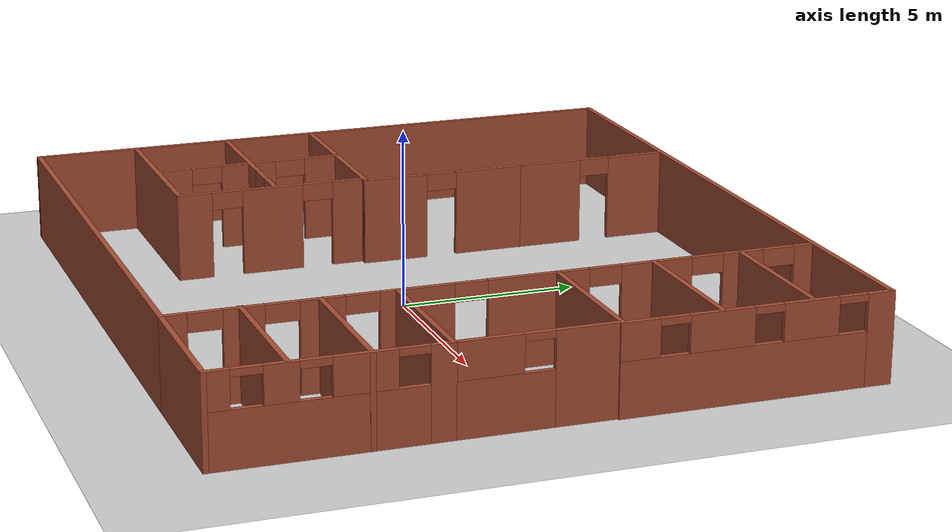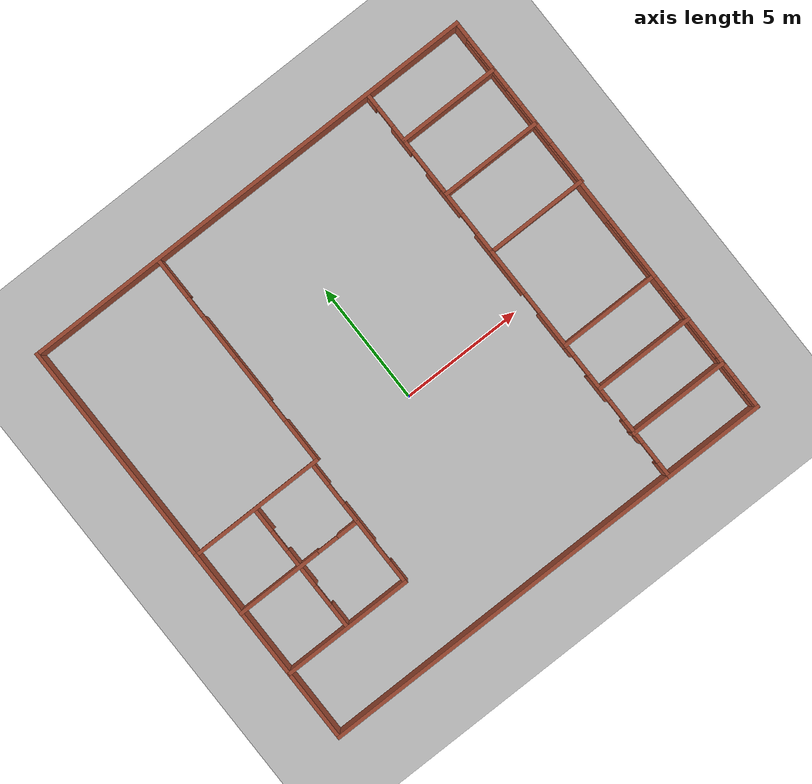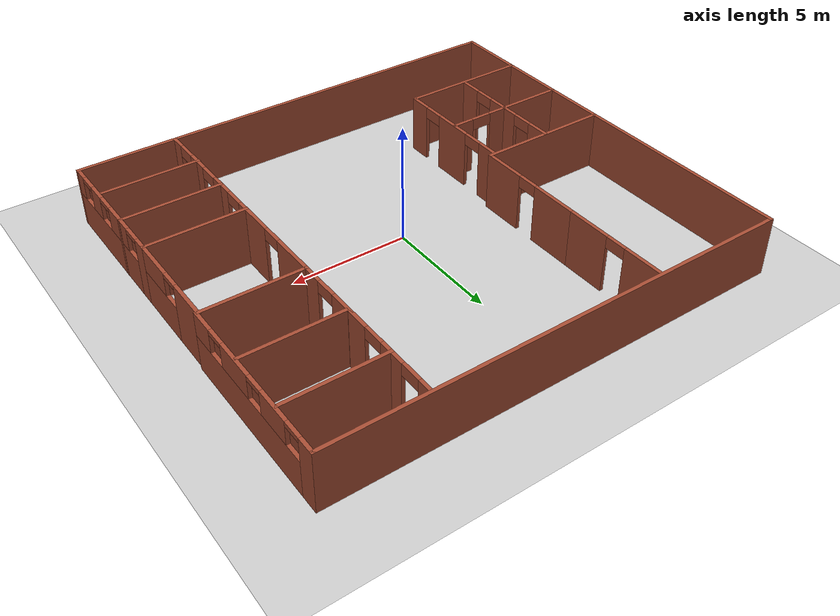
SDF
<sdf version="1.6">
 <world name="default">
  <model name="ground_plane">
   <static>1</static>
   <link name="link">
    <collision name="collision">
     <geometry><plane><normal>0 0 1</normal><size>100 100</size></plane></geometry>
     <surface><friction><ode><mu>100</mu><mu2>50</mu2></ode></friction></surface>
    </collision>
    <visual name="visual">
     <cast_shadows>0</cast_shadows>
     <geometry><plane><normal>0 0 1</normal><size>100 100</size></plane></geometry>
     <material>
      <script><uri>file://media/materials/scripts/gazebo.material</uri><name>Gazebo/Grey</name></script>
     </material>
    </visual>
   </link>
  </model>
  <model name="model">
   <pose>0.04108 0.71194 0 0 -0 0</pose>
   <link name="Wall_100">
    <pose>5.59529 6.58082 0 0 -0 1.5708</pose>
    <visual name="Wall_100_Visual_0">
     <pose>-1.7592 0 1.25 0 -0 0</pose>
     <geometry><box><size>0.981608 0.15 2.5</size></box></geometry>
     <material>
      <script><uri>file://media/materials/scripts/gazebo.material</uri><name>Gazebo/Bricks</name></script>
      <ambient>1 1 1 1</ambient>
     </material>
     <meta><layer>0</layer></meta>
    </visual>
    <collision name="Wall_100_Collision_0">
     <geometry><box><size>0.981608 0.15 2.5</size></box></geometry>
     <pose>-1.7592 0 1.25 0 -0 0</pose>
    </collision>
    <visual name="Wall_100_Visual_1">
     <pose>0.216608 0 1.25 0 -0 0</pose>
     <geometry><box><size>1.17 0.15 2.5</size></box></geometry>
     <material>
      <script><uri>file://media/materials/scripts/gazebo.material</uri><name>Gazebo/Bricks</name></script>
      <ambient>1 1 1 1</ambient>
     </material>
     <meta><layer>0</layer></meta>
    </visual>
    <collision name="Wall_100_Collision_1">
     <geometry><box><size>1.17 0.15 2.5</size></box></geometry>
     <pose>0.216608 0 1.25 0 -0 0</pose>
    </collision>
    <visual name="Wall_100_Visual_2">
     <pose>1.9758 0 1.25 0 -0 0</pose>
     <geometry><box><size>0.548392 0.15 2.5</size></box></geometry>
     <material>
      <script><uri>file://media/materials/scripts/gazebo.material</uri><name>Gazebo/Bricks</name></script>
      <ambient>1 1 1 1</ambient>
     </material>
     <meta><layer>0</layer></meta>
    </visual>
    <collision name="Wall_100_Collision_2">
     <geometry><box><size>0.548392 0.15 2.5</size></box></geometry>
     <pose>1.9758 0 1.25 0 -0 0</pose>
    </collision>
    <visual name="Wall_100_Visual_3">
     <pose>-0.818392 0 2.25 0 -0 0</pose>
     <geometry><box><size>0.9 0.15 0.5</size></box></geometry>
     <material>
      <script><uri>file://media/materials/scripts/gazebo.material</uri><name>Gazebo/Bricks</name></script>
      <ambient>1 1 1 1</ambient>
     </material>
     <meta><layer>0</layer></meta>
    </visual>
    <collision name="Wall_100_Collision_3">
     <geometry><box><size>0.9 0.15 0.5</size></box></geometry>
     <pose>-0.818392 0 2.25 0 -0 0</pose>
    </collision>
    <visual name="Wall_100_Visual_4">
     <pose>1.25161 0 2.25 0 -0 0</pose>
     <geometry><box><size>0.9 0.15 0.5</size></box></geometry>
     <material>
      <script><uri>file://media/materials/scripts/gazebo.material</uri><name>Gazebo/Bricks</name></script>
      <ambient>1 1 1 1</ambient>
     </material>
     <meta><layer>0</layer></meta>
    </visual>
    <collision name="Wall_100_Collision_4">
     <geometry><box><size>0.9 0.15 0.5</size></box></geometry>
     <pose>1.25161 0 2.25 0 -0 0</pose>
    </collision>
   </link>
   <link name="Wall_102">
    <pose>9.69529 -5.84418 0 0 0 -1.5708</pose>
    <visual name="Wall_102_Visual_0">
     <pose>-2.80184 0 1.25 0 -0 0</pose>
     <geometry><box><size>0.646321 0.15 2.5</size></box></geometry>
     <material>
      <script><uri>file://media/materials/scripts/gazebo.material</uri><name>Gazebo/Bricks</name></script>
      <ambient>0.513726 0.407843 0.482353 1</ambient>
     </material>
     <meta><layer>0</layer></meta>
    </visual>
    <collision name="Wall_102_Collision_0">
     <geometry><box><size>0.646321 0.15 2.5</size></box></geometry>
     <pose>-2.80184 0 1.25 0 -0 0</pose>
    </collision>
    <visual name="Wall_102_Visual_1">
     <pose>0.32316 0 0.75 0 -0 0</pose>
     <geometry><box><size>5.60368 0.15 1.5</size></box></geometry>
     <material>
      <script><uri>file://media/materials/scripts/gazebo.material</uri><name>Gazebo/Bricks</name></script>
      <ambient>0.513726 0.407843 0.482353 1</ambient>
     </material>
     <meta><layer>0</layer></meta>
    </visual>
    <collision name="Wall_102_Collision_1">
     <geometry><box><size>5.60368 0.15 1.5</size></box></geometry>
     <pose>0.32316 0 0.75 0 -0 0</pose>
    </collision>
    <visual name="Wall_102_Visual_2">
     <pose>-0.86558 0 2 0 -0 0</pose>
     <geometry><box><size>1.6262 0.15 1</size></box></geometry>
     <material>
      <script><uri>file://media/materials/scripts/gazebo.material</uri><name>Gazebo/Bricks</name></script>
      <ambient>0.513726 0.407843 0.482353 1</ambient>
     </material>
     <meta><layer>0</layer></meta>
    </visual>
    <collision name="Wall_102_Collision_2">
     <geometry><box><size>1.6262 0.15 1</size></box></geometry>
     <pose>-0.86558 0 2 0 -0 0</pose>
    </collision>
    <visual name="Wall_102_Visual_3">
     <pose>1.186 0 2 0 -0 0</pose>
     <geometry><box><size>0.87697 0.15 1</size></box></geometry>
     <material>
      <script><uri>file://media/materials/scripts/gazebo.material</uri><name>Gazebo/Bricks</name></script>
      <ambient>0.513726 0.407843 0.482353 1</ambient>
     </material>
     <meta><layer>0</layer></meta>
    </visual>
    <collision name="Wall_102_Collision_3">
     <geometry><box><size>0.87697 0.15 1</size></box></geometry>
     <pose>1.186 0 2 0 -0 0</pose>
    </collision>
    <visual name="Wall_102_Visual_4">
     <pose>2.77474 0 2 0 -0 0</pose>
     <geometry><box><size>0.700511 0.15 1</size></box></geometry>
     <material>
      <script><uri>file://media/materials/scripts/gazebo.material</uri><name>Gazebo/Bricks</name></script>
      <ambient>0.513726 0.407843 0.482353 1</ambient>
     </material>
     <meta><layer>0</layer></meta>
    </visual>
    <collision name="Wall_102_Collision_4">
     <geometry><box><size>0.700511 0.15 1</size></box></geometry>
     <pose>2.77474 0 2 0 -0 0</pose>
    </collision>
    <visual name="Wall_102_Visual_5">
     <pose>-2.07868 0 2.4 0 -0 0</pose>
     <geometry><box><size>0.8 0.15 0.2</size></box></geometry>
     <material>
      <script><uri>file://media/materials/scripts/gazebo.material</uri><name>Gazebo/Bricks</name></script>
      <ambient>0.513726 0.407843 0.482353 1</ambient>
     </material>
     <meta><layer>0</layer></meta>
    </visual>
    <collision name="Wall_102_Collision_5">
     <geometry><box><size>0.8 0.15 0.2</size></box></geometry>
     <pose>-2.07868 0 2.4 0 -0 0</pose>
    </collision>
    <visual name="Wall_102_Visual_6">
     <pose>0.347519 0 2.4 0 -0 0</pose>
     <geometry><box><size>0.8 0.15 0.2</size></box></geometry>
     <material>
      <script><uri>file://media/materials/scripts/gazebo.material</uri><name>Gazebo/Bricks</name></script>
      <ambient>0.513726 0.407843 0.482353 1</ambient>
     </material>
     <meta><layer>0</layer></meta>
    </visual>
    <collision name="Wall_102_Collision_6">
     <geometry><box><size>0.8 0.15 0.2</size></box></geometry>
     <pose>0.347519 0 2.4 0 -0 0</pose>
    </collision>
    <visual name="Wall_102_Visual_7">
     <pose>2.02449 0 2.4 0 -0 0</pose>
     <geometry><box><size>0.8 0.15 0.2</size></box></geometry>
     <material>
      <script><uri>file://media/materials/scripts/gazebo.material</uri><name>Gazebo/Bricks</name></script>
      <ambient>0.513726 0.407843 0.482353 1</ambient>
     </material>
     <meta><layer>0</layer></meta>
    </visual>
    <collision name="Wall_102_Collision_7">
     <geometry><box><size>0.8 0.15 0.2</size></box></geometry>
     <pose>2.02449 0 2.4 0 -0 0</pose>
    </collision>
   </link>
   <link name="Wall_103">
    <collision name="Wall_103_Collision">
     <geometry><box><size>4.25 0.15 2.5</size></box></geometry>
     <pose>0 0 1.25 0 -0 0</pose>
    </collision>
    <visual name="Wall_103_Visual">
     <pose>0 0 1.25 0 -0 0</pose>
     <geometry><box><size>4.25 0.15 2.5</size></box></geometry>
     <material>
      <script><uri>file://media/materials/scripts/gazebo.material</uri><name>Gazebo/Bricks</name></script>
      <ambient>0.513726 0.407843 0.482353 1</ambient>
     </material>
     <meta><layer>0</layer></meta>
    </visual>
    <pose>7.64529 -8.89418 0 0 -0 3.14159</pose>
   </link>
   <link name="Wall_105">
    <pose>5.59529 -0.619178 0 0 0 -1.5708</pose>
    <visual name="Wall_105_Visual_0">
     <pose>-1.24513 0 1.25 0 -0 0</pose>
     <geometry><box><size>2.00974 0.15 2.5</size></box></geometry>
     <material>
      <script><uri>file://media/materials/scripts/gazebo.material</uri><name>Gazebo/Bricks</name></script>
      <ambient>1 1 1 1</ambient>
     </material>
     <meta><layer>0</layer></meta>
    </visual>
    <collision name="Wall_105_Collision_0">
     <geometry><box><size>2.00974 0.15 2.5</size></box></geometry>
     <pose>-1.24513 0 1.25 0 -0 0</pose>
    </collision>
    <visual name="Wall_105_Visual_1">
     <pose>1.45487 0 1.25 0 -0 0</pose>
     <geometry><box><size>1.59026 0.15 2.5</size></box></geometry>
     <material>
      <script><uri>file://media/materials/scripts/gazebo.material</uri><name>Gazebo/Bricks</name></script>
      <ambient>1 1 1 1</ambient>
     </material>
     <meta><layer>0</layer></meta>
    </visual>
    <collision name="Wall_105_Collision_1">
     <geometry><box><size>1.59026 0.15 2.5</size></box></geometry>
     <pose>1.45487 0 1.25 0 -0 0</pose>
    </collision>
    <visual name="Wall_105_Visual_2">
     <pose>0.209739 0 2.25 0 -0 0</pose>
     <geometry><box><size>0.9 0.15 0.5</size></box></geometry>
     <material>
      <script><uri>file://media/materials/scripts/gazebo.material</uri><name>Gazebo/Bricks</name></script>
      <ambient>1 1 1 1</ambient>
     </material>
     <meta><layer>0</layer></meta>
    </visual>
    <collision name="Wall_105_Collision_2">
     <geometry><box><size>0.9 0.15 0.5</size></box></geometry>
     <pose>0.209739 0 2.25 0 -0 0</pose>
    </collision>
   </link>
   <link name="Wall_107">
    <collision name="Wall_107_Collision">
     <geometry><box><size>4.25 0.15 2.5</size></box></geometry>
     <pose>0 0 1.25 0 -0 0</pose>
    </collision>
    <visual name="Wall_107_Visual">
     <pose>0 0 1.25 0 -0 0</pose>
     <geometry><box><size>4.25 0.15 2.5</size></box></geometry>
     <material>
      <script><uri>file://media/materials/scripts/gazebo.material</uri><name>Gazebo/Bricks</name></script>
      <ambient>0 0 0.498039 1</ambient>
     </material>
     <meta><layer>0</layer></meta>
    </visual>
    <pose>7.65134 4.2397 0 0 -0 0</pose>
   </link>
   <link name="Wall_109">
    <collision name="Wall_109_Collision">
     <geometry><box><size>4.25 0.15 2.5</size></box></geometry>
     <pose>0 0 1.25 0 -0 0</pose>
    </collision>
    <visual name="Wall_109_Visual">
     <pose>0 0 1.25 0 -0 0</pose>
     <geometry><box><size>4.25 0.15 2.5</size></box></geometry>
     <material>
      <script><uri>file://media/materials/scripts/gazebo.material</uri><name>Gazebo/Bricks</name></script>
      <ambient>0 0 0.498039 1</ambient>
     </material>
     <meta><layer>0</layer></meta>
    </visual>
    <pose>7.65134 6.73379 0 0 -0 0</pose>
   </link>
   <link name="Wall_111">
    <collision name="Wall_111_Collision">
     <geometry><box><size>4.25 0.15 2.5</size></box></geometry>
     <pose>0 0 1.25 0 -0 0</pose>
    </collision>
    <visual name="Wall_111_Visual">
     <pose>0 0 1.25 0 -0 0</pose>
     <geometry><box><size>4.25 0.15 2.5</size></box></geometry>
     <material>
      <script><uri>file://media/materials/scripts/gazebo.material</uri><name>Gazebo/Bricks</name></script>
      <ambient>0 0 0.498039 1</ambient>
     </material>
     <meta><layer>0</layer></meta>
    </visual>
    <pose>7.65134 -4.8114 0 0 -0 0</pose>
   </link>
   <link name="Wall_113">
    <collision name="Wall_113_Collision">
     <geometry><box><size>4.25 0.15 2.5</size></box></geometry>
     <pose>0 0 1.25 0 -0 0</pose>
    </collision>
    <visual name="Wall_113_Visual">
     <pose>0 0 1.25 0 -0 0</pose>
     <geometry><box><size>4.25 0.15 2.5</size></box></geometry>
     <material>
      <script><uri>file://media/materials/scripts/gazebo.material</uri><name>Gazebo/Bricks</name></script>
      <ambient>0 0 0.498039 1</ambient>
     </material>
     <meta><layer>0</layer></meta>
    </visual>
    <pose>7.61112 -6.86299 0 0 -0 0</pose>
   </link>
   <link name="Wall_115">
    <pose>-4.14519 6.56888 0 0 -0 1.5708</pose>
    <visual name="Wall_115_Visual_0">
     <pose>-1.29772 0 1.25 0 -0 0</pose>
     <geometry><box><size>1.90457 0.15 2.5</size></box></geometry>
     <material>
      <script><uri>file://media/materials/scripts/gazebo.material</uri><name>Gazebo/Bricks</name></script>
      <ambient>1 1 1 1</ambient>
     </material>
     <meta><layer>0</layer></meta>
    </visual>
    <collision name="Wall_115_Collision_0">
     <geometry><box><size>1.90457 0.15 2.5</size></box></geometry>
     <pose>-1.29772 0 1.25 0 -0 0</pose>
    </collision>
    <visual name="Wall_115_Visual_1">
     <pose>1.40228 0 1.25 0 -0 0</pose>
     <geometry><box><size>1.69543 0.15 2.5</size></box></geometry>
     <material>
      <script><uri>file://media/materials/scripts/gazebo.material</uri><name>Gazebo/Bricks</name></script>
      <ambient>1 1 1 1</ambient>
     </material>
     <meta><layer>0</layer></meta>
    </visual>
    <collision name="Wall_115_Collision_1">
     <geometry><box><size>1.69543 0.15 2.5</size></box></geometry>
     <pose>1.40228 0 1.25 0 -0 0</pose>
    </collision>
    <visual name="Wall_115_Visual_2">
     <pose>0.104567 0 2.25 0 -0 0</pose>
     <geometry><box><size>0.9 0.15 0.5</size></box></geometry>
     <material>
      <script><uri>file://media/materials/scripts/gazebo.material</uri><name>Gazebo/Bricks</name></script>
      <ambient>1 1 1 1</ambient>
     </material>
     <meta><layer>0</layer></meta>
    </visual>
    <collision name="Wall_115_Collision_2">
     <geometry><box><size>0.9 0.15 0.5</size></box></geometry>
     <pose>0.104567 0 2.25 0 -0 0</pose>
    </collision>
   </link>
   <link name="Wall_117">
    <collision name="Wall_117_Collision">
     <geometry><box><size>5.5 0.15 2.5</size></box></geometry>
     <pose>0 0 1.25 0 -0 0</pose>
    </collision>
    <visual name="Wall_117_Visual">
     <pose>0 0 1.25 0 -0 0</pose>
     <geometry><box><size>5.5 0.15 2.5</size></box></geometry>
     <material>
      <script><uri>file://media/materials/scripts/gazebo.material</uri><name>Gazebo/Bricks</name></script>
      <ambient>1 1 1 1</ambient>
     </material>
     <meta><layer>0</layer></meta>
    </visual>
    <pose>-7.03374 -5.95268 0 0 -0 0</pose>
   </link>
   <link name="Wall_118">
    <pose>-4.35874 -3.27767 0 0 -0 1.5708</pose>
    <visual name="Wall_118_Visual_0">
     <pose>-2.24358 0 1.25 0 -0 0</pose>
     <geometry><box><size>1.01284 0.15 2.5</size></box></geometry>
     <material>
      <script><uri>file://media/materials/scripts/gazebo.material</uri><name>Gazebo/Bricks</name></script>
      <ambient>1 1 1 1</ambient>
     </material>
     <meta><layer>0</layer></meta>
    </visual>
    <collision name="Wall_118_Collision_0">
     <geometry><box><size>1.01284 0.15 2.5</size></box></geometry>
     <pose>-2.24358 0 1.25 0 -0 0</pose>
    </collision>
    <visual name="Wall_118_Visual_1">
     <pose>0.054412 0 1.25 0 -0 0</pose>
     <geometry><box><size>1.78315 0.15 2.5</size></box></geometry>
     <material>
      <script><uri>file://media/materials/scripts/gazebo.material</uri><name>Gazebo/Bricks</name></script>
      <ambient>1 1 1 1</ambient>
     </material>
     <meta><layer>0</layer></meta>
    </visual>
    <collision name="Wall_118_Collision_1">
     <geometry><box><size>1.78315 0.15 2.5</size></box></geometry>
     <pose>0.054412 0 1.25 0 -0 0</pose>
    </collision>
    <visual name="Wall_118_Visual_2">
     <pose>2.29799 0 1.25 0 -0 0</pose>
     <geometry><box><size>0.904013 0.15 2.5</size></box></geometry>
     <material>
      <script><uri>file://media/materials/scripts/gazebo.material</uri><name>Gazebo/Bricks</name></script>
      <ambient>1 1 1 1</ambient>
     </material>
     <meta><layer>0</layer></meta>
    </visual>
    <collision name="Wall_118_Collision_2">
     <geometry><box><size>0.904013 0.15 2.5</size></box></geometry>
     <pose>2.29799 0 1.25 0 -0 0</pose>
    </collision>
    <visual name="Wall_118_Visual_3">
     <pose>-1.28716 0 2.25 0 -0 0</pose>
     <geometry><box><size>0.9 0.15 0.5</size></box></geometry>
     <material>
      <script><uri>file://media/materials/scripts/gazebo.material</uri><name>Gazebo/Bricks</name></script>
      <ambient>1 1 1 1</ambient>
     </material>
     <meta><layer>0</layer></meta>
    </visual>
    <collision name="Wall_118_Collision_3">
     <geometry><box><size>0.9 0.15 0.5</size></box></geometry>
     <pose>-1.28716 0 2.25 0 -0 0</pose>
    </collision>
    <visual name="Wall_118_Visual_4">
     <pose>1.39599 0 2.25 0 -0 0</pose>
     <geometry><box><size>0.9 0.15 0.5</size></box></geometry>
     <material>
      <script><uri>file://media/materials/scripts/gazebo.material</uri><name>Gazebo/Bricks</name></script>
      <ambient>1 1 1 1</ambient>
     </material>
     <meta><layer>0</layer></meta>
    </visual>
    <collision name="Wall_118_Collision_4">
     <geometry><box><size>0.9 0.15 0.5</size></box></geometry>
     <pose>1.39599 0 2.25 0 -0 0</pose>
    </collision>
   </link>
   <link name="Wall_120">
    <pose>-7.08 -3.13074 0 0 -0 0</pose>
    <visual name="Wall_120_Visual_0">
     <pose>-0.925137 0 1.25 0 -0 0</pose>
     <geometry><box><size>3.64973 0.15 2.5</size></box></geometry>
     <material>
      <script><uri>file://media/materials/scripts/gazebo.material</uri><name>Gazebo/Bricks</name></script>
      <ambient>1 1 1 1</ambient>
     </material>
     <meta><layer>0</layer></meta>
    </visual>
    <collision name="Wall_120_Collision_0">
     <geometry><box><size>3.64973 0.15 2.5</size></box></geometry>
     <pose>-0.925137 0 1.25 0 -0 0</pose>
    </collision>
    <visual name="Wall_120_Visual_1">
     <pose>2.27486 0 1.25 0 -0 0</pose>
     <geometry><box><size>0.950274 0.15 2.5</size></box></geometry>
     <material>
      <script><uri>file://media/materials/scripts/gazebo.material</uri><name>Gazebo/Bricks</name></script>
      <ambient>1 1 1 1</ambient>
     </material>
     <meta><layer>0</layer></meta>
    </visual>
    <collision name="Wall_120_Collision_1">
     <geometry><box><size>0.950274 0.15 2.5</size></box></geometry>
     <pose>2.27486 0 1.25 0 -0 0</pose>
    </collision>
    <visual name="Wall_120_Visual_2">
     <pose>1.34973 0 2.25 0 -0 0</pose>
     <geometry><box><size>0.9 0.15 0.5</size></box></geometry>
     <material>
      <script><uri>file://media/materials/scripts/gazebo.material</uri><name>Gazebo/Bricks</name></script>
      <ambient>1 1 1 1</ambient>
     </material>
     <meta><layer>0</layer></meta>
    </visual>
    <collision name="Wall_120_Collision_2">
     <geometry><box><size>0.9 0.15 0.5</size></box></geometry>
     <pose>1.34973 0 2.25 0 -0 0</pose>
    </collision>
   </link>
   <link name="Wall_122">
    <pose>-7.02559 -3.16885 0 0 0 -1.5708</pose>
    <visual name="Wall_122_Visual_0">
     <pose>-2.22045 0 1.25 0 -0 0</pose>
     <geometry><box><size>1.0591 0.15 2.5</size></box></geometry>
     <material>
      <script><uri>file://media/materials/scripts/gazebo.material</uri><name>Gazebo/Bricks</name></script>
      <ambient>1 1 1 1</ambient>
     </material>
     <meta><layer>0</layer></meta>
    </visual>
    <collision name="Wall_122_Collision_0">
     <geometry><box><size>1.0591 0.15 2.5</size></box></geometry>
     <pose>-2.22045 0 1.25 0 -0 0</pose>
    </collision>
    <visual name="Wall_122_Visual_1">
     <pose>0.031281 0 1.25 0 -0 0</pose>
     <geometry><box><size>1.64437 0.15 2.5</size></box></geometry>
     <material>
      <script><uri>file://media/materials/scripts/gazebo.material</uri><name>Gazebo/Bricks</name></script>
      <ambient>1 1 1 1</ambient>
     </material>
     <meta><layer>0</layer></meta>
    </visual>
    <collision name="Wall_122_Collision_1">
     <geometry><box><size>1.64437 0.15 2.5</size></box></geometry>
     <pose>0.031281 0 1.25 0 -0 0</pose>
    </collision>
    <visual name="Wall_122_Visual_2">
     <pose>2.25173 0 1.25 0 -0 0</pose>
     <geometry><box><size>0.996536 0.15 2.5</size></box></geometry>
     <material>
      <script><uri>file://media/materials/scripts/gazebo.material</uri><name>Gazebo/Bricks</name></script>
      <ambient>1 1 1 1</ambient>
     </material>
     <meta><layer>0</layer></meta>
    </visual>
    <collision name="Wall_122_Collision_2">
     <geometry><box><size>0.996536 0.15 2.5</size></box></geometry>
     <pose>2.25173 0 1.25 0 -0 0</pose>
    </collision>
    <visual name="Wall_122_Visual_3">
     <pose>-1.2409 0 2.25 0 -0 0</pose>
     <geometry><box><size>0.9 0.15 0.5</size></box></geometry>
     <material>
      <script><uri>file://media/materials/scripts/gazebo.material</uri><name>Gazebo/Bricks</name></script>
      <ambient>1 1 1 1</ambient>
     </material>
     <meta><layer>0</layer></meta>
    </visual>
    <collision name="Wall_122_Collision_3">
     <geometry><box><size>0.9 0.15 0.5</size></box></geometry>
     <pose>-1.2409 0 2.25 0 -0 0</pose>
    </collision>
    <visual name="Wall_122_Visual_4">
     <pose>1.30346 0 2.25 0 -0 0</pose>
     <geometry><box><size>0.9 0.15 0.5</size></box></geometry>
     <material>
      <script><uri>file://media/materials/scripts/gazebo.material</uri><name>Gazebo/Bricks</name></script>
      <ambient>1 1 1 1</ambient>
     </material>
     <meta><layer>0</layer></meta>
    </visual>
    <collision name="Wall_122_Collision_4">
     <geometry><box><size>0.9 0.15 0.5</size></box></geometry>
     <pose>1.30346 0 2.25 0 -0 0</pose>
    </collision>
   </link>
   <link name="Wall_74">
    <pose>5.59529 2.98082 0 0 0 -1.5708</pose>
    <visual name="Wall_74_Visual_0">
     <pose>-0.916804 0 1.25 0 -0 0</pose>
     <geometry><box><size>1.16639 0.15 2.5</size></box></geometry>
     <material>
      <script><uri>file://media/materials/scripts/gazebo.material</uri><name>Gazebo/Bricks</name></script>
      <ambient>1 1 1 1</ambient>
     </material>
     <meta><layer>0</layer></meta>
    </visual>
    <collision name="Wall_74_Collision_0">
     <geometry><box><size>1.16639 0.15 2.5</size></box></geometry>
     <pose>-0.916804 0 1.25 0 -0 0</pose>
    </collision>
    <visual name="Wall_74_Visual_1">
     <pose>1.0332 0 1.25 0 -0 0</pose>
     <geometry><box><size>0.933608 0.15 2.5</size></box></geometry>
     <material>
      <script><uri>file://media/materials/scripts/gazebo.material</uri><name>Gazebo/Bricks</name></script>
      <ambient>1 1 1 1</ambient>
     </material>
     <meta><layer>0</layer></meta>
    </visual>
    <collision name="Wall_74_Collision_1">
     <geometry><box><size>0.933608 0.15 2.5</size></box></geometry>
     <pose>1.0332 0 1.25 0 -0 0</pose>
    </collision>
    <visual name="Wall_74_Visual_2">
     <pose>0.116392 0 2.25 0 -0 0</pose>
     <geometry><box><size>0.9 0.15 0.5</size></box></geometry>
     <material>
      <script><uri>file://media/materials/scripts/gazebo.material</uri><name>Gazebo/Bricks</name></script>
      <ambient>1 1 1 1</ambient>
     </material>
     <meta><layer>0</layer></meta>
    </visual>
    <collision name="Wall_74_Collision_2">
     <geometry><box><size>0.9 0.15 0.5</size></box></geometry>
     <pose>0.116392 0 2.25 0 -0 0</pose>
    </collision>
   </link>
   <link name="Wall_75">
    <collision name="Wall_75_Collision">
     <geometry><box><size>4.25 0.15 2.5</size></box></geometry>
     <pose>0 0 1.25 0 -0 0</pose>
    </collision>
    <visual name="Wall_75_Visual">
     <pose>0 0 1.25 0 -0 0</pose>
     <geometry><box><size>4.25 0.15 2.5</size></box></geometry>
     <material>
      <script><uri>file://media/materials/scripts/gazebo.material</uri><name>Gazebo/Bricks</name></script>
      <ambient>0 0 0.498039 1</ambient>
     </material>
     <meta><layer>0</layer></meta>
    </visual>
    <pose>7.64529 1.55582 0 0 -0 0</pose>
   </link>
   <link name="Wall_76">
    <pose>9.69529 -0.619178 0 0 0 -1.5708</pose>
    <visual name="Wall_76_Visual_0">
     <pose>-1.34081 0 1.25 0 -0 0</pose>
     <geometry><box><size>1.81838 0.15 2.5</size></box></geometry>
     <material>
      <script><uri>file://media/materials/scripts/gazebo.material</uri><name>Gazebo/Bricks</name></script>
      <ambient>0.513726 0.407843 0.482353 1</ambient>
     </material>
     <meta><layer>0</layer></meta>
    </visual>
    <collision name="Wall_76_Collision_0">
     <geometry><box><size>1.81838 0.15 2.5</size></box></geometry>
     <pose>-1.34081 0 1.25 0 -0 0</pose>
    </collision>
    <visual name="Wall_76_Visual_1">
     <pose>0.909188 0 0.75 0 -0 0</pose>
     <geometry><box><size>2.68162 0.15 1.5</size></box></geometry>
     <material>
      <script><uri>file://media/materials/scripts/gazebo.material</uri><name>Gazebo/Bricks</name></script>
      <ambient>0.513726 0.407843 0.482353 1</ambient>
     </material>
     <meta><layer>0</layer></meta>
    </visual>
    <collision name="Wall_76_Collision_1">
     <geometry><box><size>2.68162 0.15 1.5</size></box></geometry>
     <pose>0.909188 0 0.75 0 -0 0</pose>
    </collision>
    <visual name="Wall_76_Visual_2">
     <pose>1.30919 0 2 0 -0 0</pose>
     <geometry><box><size>1.88162 0.15 1</size></box></geometry>
     <material>
      <script><uri>file://media/materials/scripts/gazebo.material</uri><name>Gazebo/Bricks</name></script>
      <ambient>0.513726 0.407843 0.482353 1</ambient>
     </material>
     <meta><layer>0</layer></meta>
    </visual>
    <collision name="Wall_76_Collision_2">
     <geometry><box><size>1.88162 0.15 1</size></box></geometry>
     <pose>1.30919 0 2 0 -0 0</pose>
    </collision>
    <visual name="Wall_76_Visual_3">
     <pose>-0.031624 0 2.4 0 -0 0</pose>
     <geometry><box><size>0.8 0.15 0.2</size></box></geometry>
     <material>
      <script><uri>file://media/materials/scripts/gazebo.material</uri><name>Gazebo/Bricks</name></script>
      <ambient>0.513726 0.407843 0.482353 1</ambient>
     </material>
     <meta><layer>0</layer></meta>
    </visual>
    <collision name="Wall_76_Collision_3">
     <geometry><box><size>0.8 0.15 0.2</size></box></geometry>
     <pose>-0.031624 0 2.4 0 -0 0</pose>
    </collision>
   </link>
   <link name="Wall_77">
    <collision name="Wall_77_Collision">
     <geometry><box><size>4.25 0.15 2.5</size></box></geometry>
     <pose>0 0 1.25 0 -0 0</pose>
    </collision>
    <visual name="Wall_77_Visual">
     <pose>0 0 1.25 0 -0 0</pose>
     <geometry><box><size>4.25 0.15 2.5</size></box></geometry>
     <material>
      <script><uri>file://media/materials/scripts/gazebo.material</uri><name>Gazebo/Bricks</name></script>
      <ambient>0 0 0.498039 1</ambient>
     </material>
     <meta><layer>0</layer></meta>
    </visual>
    <pose>7.64529 -2.79418 0 0 -0 3.14159</pose>
   </link>
   <link name="Wall_78">
    <pose>5.59529 -5.84418 0 0 0 -1.5708</pose>
    <visual name="Wall_78_Visual_0">
     <pose>-2.84695 0 1.25 0 -0 0</pose>
     <geometry><box><size>0.556094 0.15 2.5</size></box></geometry>
     <material>
      <script><uri>file://media/materials/scripts/gazebo.material</uri><name>Gazebo/Bricks</name></script>
      <ambient>1 1 1 1</ambient>
     </material>
     <meta><layer>0</layer></meta>
    </visual>
    <collision name="Wall_78_Collision_0">
     <geometry><box><size>0.556094 0.15 2.5</size></box></geometry>
     <pose>-2.84695 0 1.25 0 -0 0</pose>
    </collision>
    <visual name="Wall_78_Visual_1">
     <pose>-1.073 0 1.25 0 -0 0</pose>
     <geometry><box><size>1.19181 0.15 2.5</size></box></geometry>
     <material>
      <script><uri>file://media/materials/scripts/gazebo.material</uri><name>Gazebo/Bricks</name></script>
      <ambient>1 1 1 1</ambient>
     </material>
     <meta><layer>0</layer></meta>
    </visual>
    <collision name="Wall_78_Collision_1">
     <geometry><box><size>1.19181 0.15 2.5</size></box></geometry>
     <pose>-1.073 0 1.25 0 -0 0</pose>
    </collision>
    <visual name="Wall_78_Visual_2">
     <pose>0.95847 0 1.25 0 -0 0</pose>
     <geometry><box><size>1.07113 0.15 2.5</size></box></geometry>
     <material>
      <script><uri>file://media/materials/scripts/gazebo.material</uri><name>Gazebo/Bricks</name></script>
      <ambient>1 1 1 1</ambient>
     </material>
     <meta><layer>0</layer></meta>
    </visual>
    <collision name="Wall_78_Collision_2">
     <geometry><box><size>1.07113 0.15 2.5</size></box></geometry>
     <pose>0.95847 0 1.25 0 -0 0</pose>
    </collision>
    <visual name="Wall_78_Visual_3">
     <pose>2.75952 0 1.25 0 -0 0</pose>
     <geometry><box><size>0.730965 0.15 2.5</size></box></geometry>
     <material>
      <script><uri>file://media/materials/scripts/gazebo.material</uri><name>Gazebo/Bricks</name></script>
      <ambient>1 1 1 1</ambient>
     </material>
     <meta><layer>0</layer></meta>
    </visual>
    <collision name="Wall_78_Collision_3">
     <geometry><box><size>0.730965 0.15 2.5</size></box></geometry>
     <pose>2.75952 0 1.25 0 -0 0</pose>
    </collision>
    <visual name="Wall_78_Visual_4">
     <pose>-2.11891 0 2.25 0 -0 0</pose>
     <geometry><box><size>0.9 0.15 0.5</size></box></geometry>
     <material>
      <script><uri>file://media/materials/scripts/gazebo.material</uri><name>Gazebo/Bricks</name></script>
      <ambient>1 1 1 1</ambient>
     </material>
     <meta><layer>0</layer></meta>
    </visual>
    <collision name="Wall_78_Collision_4">
     <geometry><box><size>0.9 0.15 0.5</size></box></geometry>
     <pose>-2.11891 0 2.25 0 -0 0</pose>
    </collision>
    <visual name="Wall_78_Visual_5">
     <pose>-0.027095 0 2.25 0 -0 0</pose>
     <geometry><box><size>0.9 0.15 0.5</size></box></geometry>
     <material>
      <script><uri>file://media/materials/scripts/gazebo.material</uri><name>Gazebo/Bricks</name></script>
      <ambient>1 1 1 1</ambient>
     </material>
     <meta><layer>0</layer></meta>
    </visual>
    <collision name="Wall_78_Collision_5">
     <geometry><box><size>0.9 0.15 0.5</size></box></geometry>
     <pose>-0.027095 0 2.25 0 -0 0</pose>
    </collision>
    <visual name="Wall_78_Visual_6">
     <pose>1.94403 0 2.25 0 -0 0</pose>
     <geometry><box><size>0.9 0.15 0.5</size></box></geometry>
     <material>
      <script><uri>file://media/materials/scripts/gazebo.material</uri><name>Gazebo/Bricks</name></script>
      <ambient>1 1 1 1</ambient>
     </material>
     <meta><layer>0</layer></meta>
    </visual>
    <collision name="Wall_78_Collision_6">
     <geometry><box><size>0.9 0.15 0.5</size></box></geometry>
     <pose>1.94403 0 2.25 0 -0 0</pose>
    </collision>
   </link>
   <link name="Wall_79">
    <collision name="Wall_79_Collision">
     <geometry><box><size>15.5 0.15 2.5</size></box></geometry>
     <pose>0 0 1.25 0 -0 0</pose>
    </collision>
    <visual name="Wall_79_Visual">
     <pose>0 0 1.25 0 -0 0</pose>
     <geometry><box><size>15.5 0.15 2.5</size></box></geometry>
     <material>
      <script><uri>file://media/materials/scripts/gazebo.material</uri><name>Gazebo/Bricks</name></script>
      <ambient>0.513726 0.407843 0.482353 1</ambient>
     </material>
     <meta><layer>0</layer></meta>
    </visual>
    <pose>-2.07971 -8.89418 0 0 -0 3.14159</pose>
   </link>
   <link name="Wall_80">
    <collision name="Wall_80_Collision">
     <geometry><box><size>8.58806 0.15 2.5</size></box></geometry>
     <pose>0 0 1.25 0 -0 0</pose>
    </collision>
    <visual name="Wall_80_Visual">
     <pose>0 0 1.25 0 -0 0</pose>
     <geometry><box><size>8.58806 0.15 2.5</size></box></geometry>
     <material>
      <script><uri>file://media/materials/scripts/gazebo.material</uri><name>Gazebo/Bricks</name></script>
      <ambient>0.498039 0.396078 0.466667 1</ambient>
     </material>
     <meta><layer>0</layer></meta>
    </visual>
    <pose>-9.74995 -4.67515 0 0 -0 1.56967</pose>
   </link>
   <link name="Wall_89">
    <collision name="Wall_89_Collision">
     <geometry><box><size>5.75 0.15 2.5</size></box></geometry>
     <pose>0 0 1.25 0 -0 0</pose>
    </collision>
    <visual name="Wall_89_Visual">
     <pose>0 0 1.25 0 -0 0</pose>
     <geometry><box><size>5.75 0.15 2.5</size></box></geometry>
     <material>
      <script><uri>file://media/materials/scripts/gazebo.material</uri><name>Gazebo/Bricks</name></script>
      <ambient>1 1 1 1</ambient>
     </material>
     <meta><layer>0</layer></meta>
    </visual>
    <pose>-6.94519 -0.456125 0 0 -0 0</pose>
   </link>
   <link name="Wall_90">
    <pose>-4.14519 1.96887 0 0 -0 1.5708</pose>
    <visual name="Wall_90_Visual_0">
     <pose>-1.53934 0 1.25 0 -0 0</pose>
     <geometry><box><size>1.92131 0.15 2.5</size></box></geometry>
     <material>
      <script><uri>file://media/materials/scripts/gazebo.material</uri><name>Gazebo/Bricks</name></script>
      <ambient>1 1 1 1</ambient>
     </material>
     <meta><layer>0</layer></meta>
    </visual>
    <collision name="Wall_90_Collision_0">
     <geometry><box><size>1.92131 0.15 2.5</size></box></geometry>
     <pose>-1.53934 0 1.25 0 -0 0</pose>
    </collision>
    <visual name="Wall_90_Visual_1">
     <pose>1.41065 0 1.25 0 -0 0</pose>
     <geometry><box><size>2.17869 0.15 2.5</size></box></geometry>
     <material>
      <script><uri>file://media/materials/scripts/gazebo.material</uri><name>Gazebo/Bricks</name></script>
      <ambient>1 1 1 1</ambient>
     </material>
     <meta><layer>0</layer></meta>
    </visual>
    <collision name="Wall_90_Collision_1">
     <geometry><box><size>2.17869 0.15 2.5</size></box></geometry>
     <pose>1.41065 0 1.25 0 -0 0</pose>
    </collision>
    <visual name="Wall_90_Visual_2">
     <pose>-0.12869 0 2.25 0 -0 0</pose>
     <geometry><box><size>0.9 0.15 0.5</size></box></geometry>
     <material>
      <script><uri>file://media/materials/scripts/gazebo.material</uri><name>Gazebo/Bricks</name></script>
      <ambient>1 1 1 1</ambient>
     </material>
     <meta><layer>0</layer></meta>
    </visual>
    <collision name="Wall_90_Collision_2">
     <geometry><box><size>0.9 0.15 0.5</size></box></geometry>
     <pose>-0.12869 0 2.25 0 -0 0</pose>
    </collision>
   </link>
   <link name="Wall_93">
    <collision name="Wall_93_Collision">
     <geometry><box><size>9.5 0.15 2.5</size></box></geometry>
     <pose>0 0 1.25 0 -0 0</pose>
    </collision>
    <visual name="Wall_93_Visual">
     <pose>0 0 1.25 0 -0 0</pose>
     <geometry><box><size>9.5 0.15 2.5</size></box></geometry>
     <material>
      <script><uri>file://media/materials/scripts/gazebo.material</uri><name>Gazebo/Bricks</name></script>
      <ambient>0.513726 0.407843 0.482353 1</ambient>
     </material>
     <meta><layer>0</layer></meta>
    </visual>
    <pose>-9.7451 4.21907 0 0 -0 1.57078</pose>
   </link>
   <link name="Wall_94">
    <collision name="Wall_94_Collision">
     <geometry><box><size>19.65 0.15 2.5</size></box></geometry>
     <pose>0 0 1.25 0 -0 0</pose>
    </collision>
    <visual name="Wall_94_Visual">
     <pose>0 0 1.25 0 -0 0</pose>
     <geometry><box><size>19.65 0.15 2.5</size></box></geometry>
     <material>
      <script><uri>file://media/materials/scripts/gazebo.material</uri><name>Gazebo/Bricks</name></script>
      <ambient>0.513726 0.407843 0.482353 1</ambient>
     </material>
     <meta><layer>0</layer></meta>
    </visual>
    <pose>0.004996 8.89426 0 0 -0 0</pose>
   </link>
   <link name="Wall_97">
    <pose>9.755 5.21926 0 0 0 -1.5708</pose>
    <visual name="Wall_97_Visual_0">
     <pose>-3.37008 0 1.25 0 -0 0</pose>
     <geometry><box><size>0.759832 0.15 2.5</size></box></geometry>
     <material>
      <script><uri>file://media/materials/scripts/gazebo.material</uri><name>Gazebo/Bricks</name></script>
      <ambient>0.513726 0.407843 0.482353 1</ambient>
     </material>
     <meta><layer>0</layer></meta>
    </visual>
    <collision name="Wall_97_Collision_0">
     <geometry><box><size>0.759832 0.15 2.5</size></box></geometry>
     <pose>-3.37008 0 1.25 0 -0 0</pose>
    </collision>
    <visual name="Wall_97_Visual_1">
     <pose>0.379916 0 0.75 0 -0 0</pose>
     <geometry><box><size>6.74017 0.15 1.5</size></box></geometry>
     <material>
      <script><uri>file://media/materials/scripts/gazebo.material</uri><name>Gazebo/Bricks</name></script>
      <ambient>0.513726 0.407843 0.482353 1</ambient>
     </material>
     <meta><layer>0</layer></meta>
    </visual>
    <collision name="Wall_97_Collision_1">
     <geometry><box><size>6.74017 0.15 1.5</size></box></geometry>
     <pose>0.379916 0 0.75 0 -0 0</pose>
    </collision>
    <visual name="Wall_97_Visual_2">
     <pose>-1.42867 0 2 0 -0 0</pose>
     <geometry><box><size>1.523 0.15 1</size></box></geometry>
     <material>
      <script><uri>file://media/materials/scripts/gazebo.material</uri><name>Gazebo/Bricks</name></script>
      <ambient>0.513726 0.407843 0.482353 1</ambient>
     </material>
     <meta><layer>0</layer></meta>
    </visual>
    <collision name="Wall_97_Collision_2">
     <geometry><box><size>1.523 0.15 1</size></box></geometry>
     <pose>-1.42867 0 2 0 -0 0</pose>
    </collision>
    <visual name="Wall_97_Visual_3">
     <pose>1.00933 0 2 0 -0 0</pose>
     <geometry><box><size>1.753 0.15 1</size></box></geometry>
     <material>
      <script><uri>file://media/materials/scripts/gazebo.material</uri><name>Gazebo/Bricks</name></script>
      <ambient>0.513726 0.407843 0.482353 1</ambient>
     </material>
     <meta><layer>0</layer></meta>
    </visual>
    <collision name="Wall_97_Collision_3">
     <geometry><box><size>1.753 0.15 1</size></box></geometry>
     <pose>1.00933 0 2 0 -0 0</pose>
    </collision>
    <visual name="Wall_97_Visual_4">
     <pose>3.21792 0 2 0 -0 0</pose>
     <geometry><box><size>1.06417 0.15 1</size></box></geometry>
     <material>
      <script><uri>file://media/materials/scripts/gazebo.material</uri><name>Gazebo/Bricks</name></script>
      <ambient>0.513726 0.407843 0.482353 1</ambient>
     </material>
     <meta><layer>0</layer></meta>
    </visual>
    <collision name="Wall_97_Collision_4">
     <geometry><box><size>1.06417 0.15 1</size></box></geometry>
     <pose>3.21792 0 2 0 -0 0</pose>
    </collision>
    <visual name="Wall_97_Visual_5">
     <pose>-2.59017 0 2.4 0 -0 0</pose>
     <geometry><box><size>0.8 0.15 0.2</size></box></geometry>
     <material>
      <script><uri>file://media/materials/scripts/gazebo.material</uri><name>Gazebo/Bricks</name></script>
      <ambient>0.513726 0.407843 0.482353 1</ambient>
     </material>
     <meta><layer>0</layer></meta>
    </visual>
    <collision name="Wall_97_Collision_5">
     <geometry><box><size>0.8 0.15 0.2</size></box></geometry>
     <pose>-2.59017 0 2.4 0 -0 0</pose>
    </collision>
    <visual name="Wall_97_Visual_6">
     <pose>-0.267167 0 2.4 0 -0 0</pose>
     <geometry><box><size>0.8 0.15 0.2</size></box></geometry>
     <material>
      <script><uri>file://media/materials/scripts/gazebo.material</uri><name>Gazebo/Bricks</name></script>
      <ambient>0.513726 0.407843 0.482353 1</ambient>
     </material>
     <meta><layer>0</layer></meta>
    </visual>
    <collision name="Wall_97_Collision_6">
     <geometry><box><size>0.8 0.15 0.2</size></box></geometry>
     <pose>-0.267167 0 2.4 0 -0 0</pose>
    </collision>
    <visual name="Wall_97_Visual_7">
     <pose>2.28583 0 2.4 0 -0 0</pose>
     <geometry><box><size>0.8 0.15 0.2</size></box></geometry>
     <material>
      <script><uri>file://media/materials/scripts/gazebo.material</uri><name>Gazebo/Bricks</name></script>
      <ambient>0.513726 0.407843 0.482353 1</ambient>
     </material>
     <meta><layer>0</layer></meta>
    </visual>
    <collision name="Wall_97_Collision_7">
     <geometry><box><size>0.8 0.15 0.2</size></box></geometry>
     <pose>2.28583 0 2.4 0 -0 0</pose>
    </collision>
   </link>
   <static>1</static>
  </model>
 </world>
</sdf>
